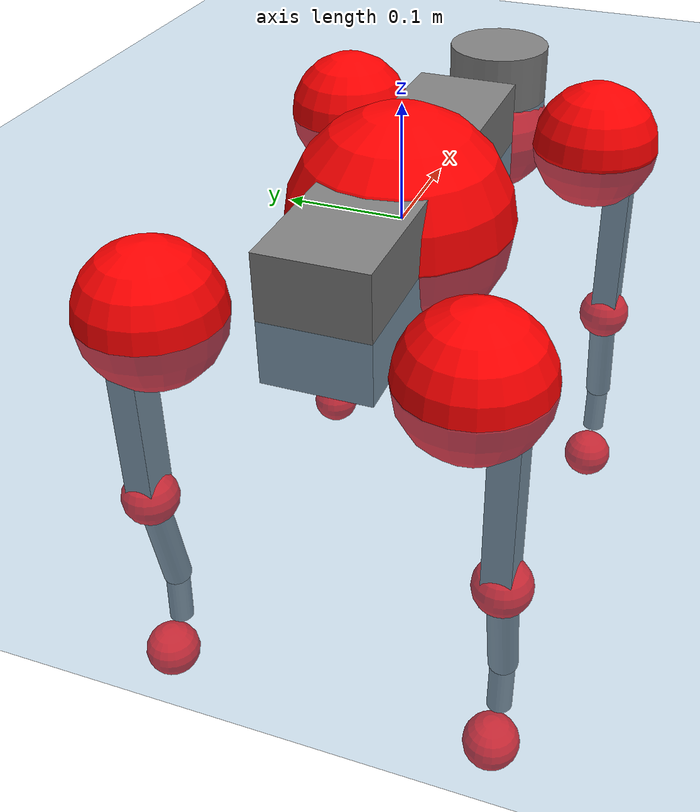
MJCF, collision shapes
<mujoco model="go2">
  <compiler angle="radian" assetdir="assets" balanceinertia="true" inertiafromgeom="false"/>

  <option timestep="0.005" density="1.2" viscosity="2e-05"/>

  <size nkey="1"/>

  <visual>
    <quality shadowsize="8192"/>
    <map shadowclip="0.5"/>
  </visual>

  <default>
    <default class="/">
      <geom contype="0" conaffinity="0" group="1" solref="-1000 -80"/>
      <site size="0.01 0.005 0.005" group="5"/>
      <general forcelimited="true" biastype="affine" gainprm="20" biasprm="0 -20 -0.5"/>
      <default class="go2">
        <joint armature="0.01" damping="0.01" frictionloss="0.2"/>
        <geom condim="1" margin="0.001"/>
        <default class="visual">
          <geom type="mesh" group="2"/>
        </default>
        <default class="collision">
          <geom group="3"/>
          <default class="foot">
            <geom size="0.022 0 0" condim="6" priority="1" friction="0.8 0.02 0.01" solimp="0.015 1 0.022"/>
          </default>
        </default>
        <default class="reward_collision_sphere">
          <geom group="5" rgba="1 0 0 1"/>
        </default>
      </default>
    </default>
  </default>

  <asset>
    <texture type="skybox" colorspace="auto" name="//unnamed_texture_0" builtin="gradient" rgb1="0.95 0.95 0.95" rgb2="0.95 0.95 0.95" width="100" height="600"/>
    <texture type="2d" colorspace="auto" name="texplane" builtin="checker" rgb1="0.345 0.575 0.748" rgb2="0.345 0.575 0.748" markrgb="1 1 1" width="512" height="512"/>
    <material name="MatPlane" class="/" texture="texplane" texuniform="true" texrepeat="2 2" specular="0.9"/>
    <material name="metal" class="/" rgba="0.9 0.95 0.95 1"/>
    <material name="black" class="/" rgba="0 0 0 1"/>
    <material name="white" class="/"/>
    <material name="gray" class="/" rgba="0.671705 0.692426 0.77427 1"/>
    <mesh name="base_0" class="/" file="base_0.obj"/>
    <mesh name="base_1" class="/" file="base_1.obj"/>
    <mesh name="base_2" class="/" file="base_2.obj"/>
    <mesh name="base_3" class="/" file="base_3.obj"/>
    <mesh name="base_4" class="/" file="base_4.obj"/>
    <mesh name="hip_0" class="/" file="hip_0.obj"/>
    <mesh name="hip_1" class="/" file="hip_1.obj"/>
    <mesh name="thigh_0" class="/" file="thigh_0.obj"/>
    <mesh name="thigh_1" class="/" file="thigh_1.obj"/>
    <mesh name="thigh_mirror_0" class="/" file="thigh_mirror_0.obj"/>
    <mesh name="thigh_mirror_1" class="/" file="thigh_mirror_1.obj"/>
    <mesh name="calf_0" class="/" file="calf_0.obj"/>
    <mesh name="calf_1" class="/" file="calf_1.obj"/>
    <mesh name="calf_mirror_0" class="/" file="calf_mirror_0.obj"/>
    <mesh name="calf_mirror_1" class="/" file="calf_mirror_1.obj"/>
    <mesh name="foot" class="/" file="foot.obj"/>
  </asset>

  <worldbody>
    <geom name="floor" class="/" size="100 100 0.125" type="plane" group="0" material="MatPlane"/>
    <light name="toplight_shadow" class="/" pos="0 0 5" dir="0.0990148 0.0990148 -0.990148" type="directional" ambient="0.04 0.04 0.04" diffuse="0.55 0.55 0.55" specular="0.12 0.12 0.12"/>
    <light name="toplight_fill" class="/" pos="0 0 5" dir="0.0990148 0.0990148 -0.990148" type="directional" castshadow="false" ambient="0.04 0.04 0.04" diffuse="0.3 0.3 0.3" specular="0.08 0.08 0.08"/>
    <body name="trunk" childclass="go2" pos="-0.000511673 0.000837546 0.000216033" quat="1 -4.69595e-07 0.000146165 0.00017758">
      <inertial pos="0.0203774 0.000206192 -0.00473244" quat="-0.000996826 0.712951 -0.00174416 0.701211" mass="6.24534" diaginertia="0.114055 0.119693 0.0103019"/>
      <joint name="//unnamed_joint_0" type="free" armature="0" damping="0" frictionloss="0"/>
      <geom name="//unnamed_geom_1" class="visual" material="black" mesh="base_0"/>
      <geom name="//unnamed_geom_2" class="visual" material="black" mesh="base_1"/>
      <geom name="//unnamed_geom_3" class="visual" material="black" mesh="base_2"/>
      <geom name="//unnamed_geom_4" class="visual" material="white" mesh="base_3"/>
      <geom name="//unnamed_geom_5" class="visual" material="gray" mesh="base_4"/>
      <geom name="trunk_1" class="collision" size="0.181693 0.0451575 0.0550583" type="box"/>
      <geom name="trunk_2" class="collision" size="0.0482968 0.0434671" pos="0.289042 0 0.00841777" type="cylinder"/>
      <geom name="trunk_3" class="collision" size="0.045399" pos="0.297155 0 -0.0505066"/>
      <geom name="//unnamed_geom_9" class="reward_collision_sphere" size="0.0965936"/>
      <geom name="//unnamed_geom_10" class="reward_collision_sphere" size="0.0579562" pos="0.283971 0 -0.03788"/>
      <site name="imu" pos="-0.0257526 -0.000295711 0.0336264" size="0.00965936"/>
      <camera name="track" pos="0 -2.0837 0" quat="0.707107 0.707107 0 0" mode="trackcom"/>
      <camera name="ego_camera" pos="0.316425 0 0.03788" quat="-0.5 -0.5 0.5 0.5"/>
      <body name="FL_hip" pos="0.196592 0.0498336 0.000347471" quat="1 0.000247206 -5.49647e-05 -0.000159364">
        <inertial pos="-0.00616083 0.00284115 0.000725985" quat="0.496874 0.500095 0.50576 0.49722" mass="0.609432" diaginertia="0.000943477 0.000728038 0.000200439"/>
        <joint name="FL_hip_joint" pos="0 0 0" axis="0.999998 -0.000518368 -0.0017014" range="-1.04332 1.05029" armature="0.00934917" damping="0.00780005" frictionloss="0.189609"/>
        <geom name="//unnamed_geom_11" class="visual" material="metal" mesh="hip_0"/>
        <geom name="//unnamed_geom_12" class="visual" material="gray" mesh="hip_1"/>
        <geom name="//unnamed_geom_13" class="collision" size="0.0444331 0.0193187" pos="0 0.0833479 0" quat="0.707107 0.707107 0 0" type="cylinder"/>
        <geom name="//unnamed_geom_14" class="reward_collision_sphere" size="0.0579562" pos="0 0.0729294 0"/>
        <body name="FL_thigh" pos="-0.000687355 0.09985 0.000274588" quat="1 -2.57979e-05 -1.57777e-05 6.72728e-05">
          <inertial pos="-0.00351262 -0.0230664 -0.0273819" quat="0.829165 0.0839609 -0.018988 0.552337" mass="1.0318" diaginertia="0.00639999 0.00720519 0.000372098"/>
          <joint name="FL_thigh_joint" pos="0 0 0" axis="-0.000109272 1 0.000107895" stiffness="0.00988577" range="-1.56028 3.4837" armature="0.00931182" damping="0.0021288" frictionloss="0.186452"/>
          <geom name="//unnamed_geom_15" class="visual" material="metal" mesh="thigh_0"/>
          <geom name="//unnamed_geom_16" class="visual" material="gray" mesh="thigh_1"/>
          <geom name="//unnamed_geom_17" class="collision" size="0.102872 0.0118327 0.0164209" pos="0 0 -0.0896492" quat="0.707107 0 0.707107 0" type="box"/>
          <body name="FL_calf" pos="-0.000778055 -0.000142868 -0.178764" quat="1 -0.000228196 -0.000226244 -0.000297721">
            <inertial pos="0.00558589 -0.00146605 -0.117856" quat="0.710717 0.00126423 -0.00431767 0.703464" mass="0.218397" diaginertia="0.00159496 0.00177905 2.26998e-05"/>
            <joint name="FL_calf_joint" pos="0 0 0" axis="-0.000131861 0.99997 -0.0076887" stiffness="0.00176541" range="-2.72366 -0.828295" armature="0.0101071" damping="0.00497955" frictionloss="0.191781"/>
            <geom name="//unnamed_geom_18" class="visual" material="gray" mesh="calf_0"/>
            <geom name="//unnamed_geom_19" class="visual" material="black" mesh="calf_1"/>
            <geom name="FL_calf0" class="collision" size="0.0115912 0.0579562" pos="0.00811345 0 -0.0505066" quat="0.994493 0 -0.104807 0" type="cylinder"/>
            <geom name="//unnamed_geom_21" class="collision" size="0.0106253 0.0313929" pos="0.0202836 0 -0.124583" quat="0.999688 0 0.0249974 0" type="cylinder"/>
            <geom name="//unnamed_geom_22" class="visual" pos="0 0 -0.179298" quat="1 0 0 0" material="black" mesh="foot"/>
            <geom name="FL_foot" class="foot" size="0.0161344" pos="-0.00202836 0 -0.179298"/>
            <geom name="//unnamed_geom_24" class="reward_collision_sphere" size="0.0241484"/>
            <geom name="//unnamed_geom_25" class="reward_collision_sphere" size="0.0241484" pos="-0.00202836 0 -0.179298"/>
            <site name="FL_foot" class="foot" pos="-0.00202836 0 -0.179298" size="0.00965936"/>
          </body>
        </body>
      </body>
      <body name="FR_hip" pos="0.196612 -0.0477043 0.00186746" quat="1 8.44581e-06 6.91629e-05 3.50363e-05">
        <inertial pos="-0.0055834 -0.00149033 -0.000342397" quat="0.498852 0.504716 0.49898 0.497421" mass="0.614027" diaginertia="0.000935427 0.000719306 0.000203005"/>
        <joint name="FR_hip_joint" pos="0 0 0" axis="0.999999 -0.00106277 -0.000856533" stiffness="0.00604565" range="-1.06764 1.0477" armature="0.00933514" damping="0.0173566" frictionloss="0.198959"/>
        <geom name="//unnamed_geom_26" class="visual" pos="0 1.74295e-09 7.47585e-08" quat="4.63268e-05 1 0 0" material="metal" mesh="hip_0"/>
        <geom name="//unnamed_geom_27" class="visual" pos="0 2.82552e-09 -1.84906e-07" quat="4.63268e-05 1 0 0" material="gray" mesh="hip_1"/>
        <geom name="//unnamed_geom_28" class="collision" size="0.0444331 0.0193187" pos="0 -0.0833479 0" quat="0.707107 0.707107 0 0" type="cylinder"/>
        <geom name="//unnamed_geom_29" class="reward_collision_sphere" size="0.0579562" pos="0 -0.0729294 0"/>
        <body name="FR_thigh" pos="8.83333e-05 -0.0999007 0.00118618" quat="1 -2.81691e-05 1.30128e-05 -1.88637e-06">
          <inertial pos="-0.00291748 0.0225602 -0.0276748" quat="0.551117 -0.0201597 0.0844494 0.829899" mass="1.02719" diaginertia="0.00639497 0.00721606 0.000373972"/>
          <joint name="FR_thigh_joint" pos="0 0 0" axis="0.00126303 -0.999994 -0.00324248" stiffness="0.000375347" range="-3.49794 1.57541" armature="0.0096935" damping="0.0101039" frictionloss="0.189371"/>
          <geom name="//unnamed_geom_30" class="visual" material="metal" mesh="thigh_mirror_0"/>
          <geom name="//unnamed_geom_31" class="visual" material="gray" mesh="thigh_mirror_1"/>
          <geom name="//unnamed_geom_32" class="collision" size="0.102872 0.0118327 0.0164209" pos="0 0 -0.0896492" quat="0.707107 0 0.707107 0" type="box"/>
          <body name="FR_calf" pos="-0.00154245 0.000721207 -0.178362" quat="1 -1.77396e-06 -4.93714e-06 -5.50608e-06">
            <inertial pos="0.0056102 0.000736974 -0.119499" quat="0.703438 -0.00515189 0.00196788 0.710735" mass="0.21759" diaginertia="0.00158618 0.00180522 2.22931e-05"/>
            <joint name="FR_calf_joint" pos="0 0 0" axis="-0.00470764 -0.999988 0.00101503" stiffness="0.00260439" range="0.837502 2.72753" armature="0.00951282" damping="0.00342374" frictionloss="0.197873"/>
            <geom name="//unnamed_geom_33" class="visual" material="gray" mesh="calf_mirror_0"/>
            <geom name="//unnamed_geom_34" class="visual" material="black" mesh="calf_mirror_1"/>
            <geom name="FR_calf0" class="collision" size="0.0125572 0.0579562" pos="0.0101418 0 -0.0505066" quat="0.995004 0 -0.0998334 0" type="cylinder"/>
            <geom name="//unnamed_geom_36" class="collision" size="0.0106253 0.0313929" pos="0.0202836 0 -0.124583" quat="0.999688 0 0.0249974 0" type="cylinder"/>
            <geom name="//unnamed_geom_37" class="visual" pos="0 0 -0.179298" quat="1 0 0 0" material="black" mesh="foot"/>
            <geom name="FR_foot" class="foot" size="0.0214293" pos="-0.00202836 0 -0.179298"/>
            <geom name="//unnamed_geom_39" class="reward_collision_sphere" size="0.0241484"/>
            <geom name="//unnamed_geom_40" class="reward_collision_sphere" size="0.0241484" pos="-0.00202836 0 -0.179298"/>
            <site name="FR_foot" class="foot" pos="-0.00202836 0 -0.179298" size="0.00965936"/>
          </body>
        </body>
      </body>
      <body name="RL_hip" pos="-0.195668 0.0479028 -0.0016128" quat="1 0.000444458 0.000580289 -8.60626e-05">
        <inertial pos="0.00564547 0.00229462 0.00026757" quat="0.505531 0.49818 0.496813 0.499432" mass="0.613031" diaginertia="0.000945029 0.000722523 0.000201113"/>
        <joint name="RL_hip_joint" pos="0 0 0" axis="-0.999809 -0.0109576 -0.0161672" range="-1.05922 1.04906" armature="0.00964886" damping="0.0192952" frictionloss="0.191626"/>
        <geom name="//unnamed_geom_41" class="visual" pos="-1.50192e-09 0 -2.94411e-07" quat="4.63268e-05 0 1 0" material="metal" mesh="hip_0"/>
        <geom name="//unnamed_geom_42" class="visual" pos="-2.43479e-09 0 -2.611e-07" quat="4.63268e-05 0 1 0" material="gray" mesh="hip_1"/>
        <geom name="//unnamed_geom_43" class="collision" size="0.0444331 0.0193187" pos="0 0.0833479 0" quat="0.707107 0.707107 0 0" type="cylinder"/>
        <geom name="//unnamed_geom_44" class="reward_collision_sphere" size="0.0579562" pos="0 0.0729294 0"/>
        <body name="RL_thigh" pos="-0.000696808 0.0981805 -0.00119358" quat="1 8.87334e-05 0.000203995 -6.7549e-05">
          <inertial pos="-0.00389192 -0.0233929 -0.0278964" quat="0.829761 0.0844515 -0.0202895 0.551319" mass="1.04202" diaginertia="0.0064098 0.00722005 0.000371823"/>
          <joint name="RL_thigh_joint" pos="0 0 0" axis="0.00105648 0.99999 0.0042751" range="-0.524915 4.54738" armature="0.0100443" damping="0.00179346" frictionloss="0.193162"/>
          <geom name="//unnamed_geom_45" class="visual" material="metal" mesh="thigh_0"/>
          <geom name="//unnamed_geom_46" class="visual" material="gray" mesh="thigh_1"/>
          <geom name="//unnamed_geom_47" class="collision" size="0.102872 0.0118327 0.0164209" pos="0 0 -0.0896492" quat="0.707107 0 0.707107 0" type="box"/>
          <body name="RL_calf" pos="-0.000127752 -0.000103461 -0.180824" quat="1 -3.75274e-05 9.94995e-05 -3.41884e-05">
            <inertial pos="0.006334 -0.000421719 -0.119723" quat="0.710823 0.00123684 -0.00443988 0.703356" mass="0.217079" diaginertia="0.00160204 0.00179529 2.255e-05"/>
            <joint name="RL_calf_joint" pos="0 0 0" axis="-0.000338535 0.999948 0.0102195" range="-2.72974 -0.835266" armature="0.00973583" damping="0.000502536" frictionloss="0.192709"/>
            <geom name="//unnamed_geom_48" class="visual" material="gray" mesh="calf_0"/>
            <geom name="//unnamed_geom_49" class="visual" material="black" mesh="calf_1"/>
            <geom name="RL_calf0" class="collision" size="0.0125572 0.0579562" pos="0.0101418 0 -0.0505066" quat="0.995004 0 -0.0998334 0" type="cylinder"/>
            <geom name="//unnamed_geom_51" class="collision" size="0.0106253 0.0313929" pos="0.0202836 0 -0.124583" quat="0.999688 0 0.0249974 0" type="cylinder"/>
            <geom name="//unnamed_geom_52" class="visual" pos="0 0 -0.179298" quat="1 0 0 0" material="black" mesh="foot"/>
            <geom name="RL_foot" class="foot" size="0.0188819" pos="-0.00202836 0 -0.179298"/>
            <geom name="//unnamed_geom_54" class="reward_collision_sphere" size="0.0241484"/>
            <geom name="//unnamed_geom_55" class="reward_collision_sphere" size="0.0241484" pos="-0.00202836 0 -0.179298"/>
            <site name="RL_foot" class="foot" pos="-0.00202836 0 -0.179298" size="0.00965936"/>
          </body>
        </body>
      </body>
      <body name="RR_hip" pos="-0.196029 -0.0504848 -0.00250318" quat="1 0.000411895 0.000154199 -0.000267123">
        <inertial pos="0.00526829 -0.00247732 0.00013169" quat="0.499131 0.496607 0.498568 0.505649" mass="0.609672" diaginertia="0.000935891 0.000721632 0.000203081"/>
        <joint name="RR_hip_joint" pos="0 0 0" axis="-0.999999 -0.00114669 0.000171573" range="-1.03968 1.04986" armature="0.00987374" damping="0.0128075" frictionloss="0.194391"/>
        <geom name="//unnamed_geom_56" class="visual" pos="1.50288e-09 1.74295e-09 -3.69169e-07" quat="2.14617e-09 4.63268e-05 4.63268e-05 -1" material="metal" mesh="hip_0"/>
        <geom name="//unnamed_geom_57" class="visual" pos="2.43242e-09 2.82552e-09 -7.61939e-08" quat="2.14617e-09 4.63268e-05 4.63268e-05 -1" material="gray" mesh="hip_1"/>
        <geom name="//unnamed_geom_58" class="collision" size="0.0444331 0.0193187" pos="0 -0.0833479 0" quat="0.707107 0.707107 0 0" type="cylinder"/>
        <geom name="//unnamed_geom_59" class="reward_collision_sphere" size="0.0579562" pos="0 -0.0729294 0"/>
        <body name="RR_thigh" pos="0.000985499 -0.0999146 -0.00163961" quat="1 -4.35822e-05 7.00959e-05 -2.20215e-05">
          <inertial pos="-0.00364415 0.0238398 -0.0277227" quat="0.551804 -0.0205699 0.0846835 0.829408" mass="1.04812" diaginertia="0.00642065 0.00718241 0.000371429"/>
          <joint name="RR_thigh_joint" pos="0 0 0" axis="0.00745885 -0.999972 -0.000935713" stiffness="0.00240873" range="-4.54179 0.505805" armature="0.00925344" damping="0.0141939" frictionloss="0.189161"/>
          <geom name="//unnamed_geom_60" class="visual" material="metal" mesh="thigh_mirror_0"/>
          <geom name="//unnamed_geom_61" class="visual" material="gray" mesh="thigh_mirror_1"/>
          <geom name="//unnamed_geom_62" class="collision" size="0.102872 0.0118327 0.0164209" pos="0 0 -0.0896492" quat="0.707107 0 0.707107 0" type="box"/>
          <body name="RR_calf" pos="-0.000165746 -0.00154934 -0.180176" quat="1 3.52107e-06 -1.5526e-06 -1.84533e-06">
            <inertial pos="0.00716582 0.00076083 -0.120002" quat="0.703513 -0.00555827 0.00136524 0.710659" mass="0.218043" diaginertia="0.00156904 0.00179918 2.20286e-05"/>
            <joint name="RR_calf_joint" pos="0 0 0" axis="-0.00144414 -0.999998 -0.0015634" range="0.821847 2.74847" armature="0.00998322" damping="0.00908071" frictionloss="0.197071"/>
            <geom name="//unnamed_geom_63" class="visual" material="gray" mesh="calf_mirror_0"/>
            <geom name="//unnamed_geom_64" class="visual" material="black" mesh="calf_mirror_1"/>
            <geom name="RR_calf0" class="collision" size="0.0125572 0.0579562" pos="0.0101418 0 -0.0505066" quat="0.995004 0 -0.0998334 0" type="cylinder"/>
            <geom name="//unnamed_geom_66" class="collision" size="0.0106253 0.0313929" pos="0.0202836 0 -0.124583" quat="0.999688 0 0.0249974 0" type="cylinder"/>
            <geom name="//unnamed_geom_67" class="visual" pos="0 0 -0.179298" quat="1 0 0 0" material="black" mesh="foot"/>
            <geom name="RR_foot" class="foot" size="0.0231463" pos="-0.00202836 0 -0.179298"/>
            <geom name="//unnamed_geom_69" class="reward_collision_sphere" size="0.0241484"/>
            <geom name="//unnamed_geom_70" class="reward_collision_sphere" size="0.0241484" pos="-0.00202836 0 -0.179298"/>
            <site name="RR_foot" class="foot" pos="-0.00202836 0 -0.179298" size="0.00965936"/>
          </body>
        </body>
      </body>
    </body>
  </worldbody>

  <contact>
    <pair class="/" geom1="floor" geom2="FL_foot" name="//unnamed_contact_0"/>
    <pair class="/" geom1="floor" geom2="FR_foot" name="//unnamed_contact_1"/>
    <pair class="/" geom1="floor" geom2="RL_foot" name="//unnamed_contact_2"/>
    <pair class="/" geom1="floor" geom2="RR_foot" name="//unnamed_contact_3"/>
  </contact>

  <actuator>
    <general name="FL_hip" class="/" joint="FL_hip_joint" forcerange="-23.0985 23.0985" gainprm="19.4303" biasprm="0 -19.4303 -0.483706"/>
    <general name="FL_thigh" class="/" joint="FL_thigh_joint" forcerange="-23.6099 23.6099" gainprm="19.4303" biasprm="0 -19.4303 -0.483706"/>
    <general name="FL_calf" class="/" joint="FL_calf_joint" forcerange="-43.5285 43.5285" gainprm="19.4303" biasprm="0 -19.4303 -0.483706"/>
    <general name="FR_hip" class="/" joint="FR_hip_joint" forcerange="-23.6192 23.6192" gainprm="19.4303" biasprm="0 -19.4303 -0.483706"/>
    <general name="FR_thigh" class="/" joint="FR_thigh_joint" forcerange="-22.7344 22.7344" gainprm="19.4303" biasprm="0 -19.4303 -0.483706"/>
    <general name="FR_calf" class="/" joint="FR_calf_joint" forcerange="-44.7777 44.7777" gainprm="19.4303" biasprm="0 -19.4303 -0.483706"/>
    <general name="RL_hip" class="/" joint="RL_hip_joint" forcerange="-22.9514 22.9514" gainprm="19.4303" biasprm="0 -19.4303 -0.483706"/>
    <general name="RL_thigh" class="/" joint="RL_thigh_joint" forcerange="-23.0902 23.0902" gainprm="19.4303" biasprm="0 -19.4303 -0.483706"/>
    <general name="RL_calf" class="/" joint="RL_calf_joint" forcerange="-43.8871 43.8871" gainprm="19.4303" biasprm="0 -19.4303 -0.483706"/>
    <general name="RR_hip" class="/" joint="RR_hip_joint" forcerange="-23.0134 23.0134" gainprm="19.4303" biasprm="0 -19.4303 -0.483706"/>
    <general name="RR_thigh" class="/" joint="RR_thigh_joint" forcerange="-22.6638 22.6638" gainprm="19.4303" biasprm="0 -19.4303 -0.483706"/>
    <general name="RR_calf" class="/" joint="RR_calf_joint" forcerange="-44.4931 44.4931" gainprm="19.4303" biasprm="0 -19.4303 -0.483706"/>
  </actuator>

  <sensor>
    <gyro site="imu" name="imu_angular_velocity"/>
    <velocimeter site="imu" name="imu_linear_velocity"/>
    <framelinvel objtype="site" objname="FL_foot" name="FL_foot_global_linear_velocity"/>
    <framelinvel objtype="site" objname="FR_foot" name="FR_foot_global_linear_velocity"/>
    <framelinvel objtype="site" objname="RL_foot" name="RL_foot_global_linear_velocity"/>
    <framelinvel objtype="site" objname="RR_foot" name="RR_foot_global_linear_velocity"/>
  </sensor>

  <keyframe>
    <key name="home" qpos="0 0 0.325 1 0 0 0 0.1 0.8 -1.5 -0.1 -0.8 1.5 -0.1 0.8 -1.5 0.1 -0.8 1.5"/>
  </keyframe>
</mujoco>
